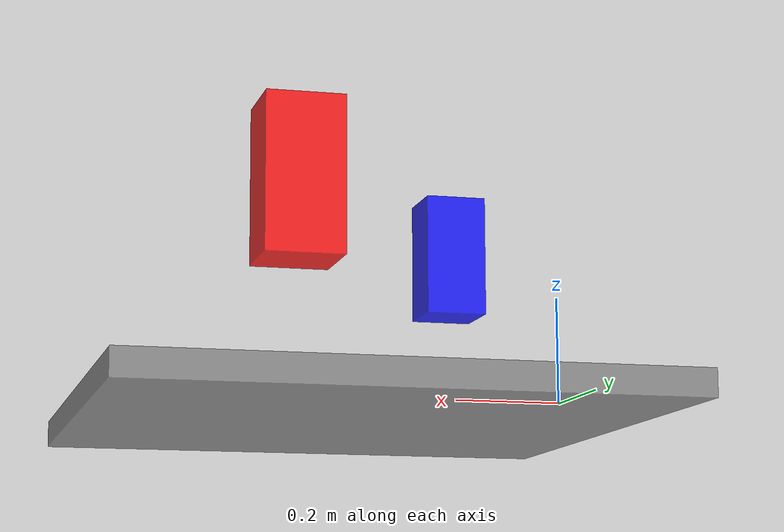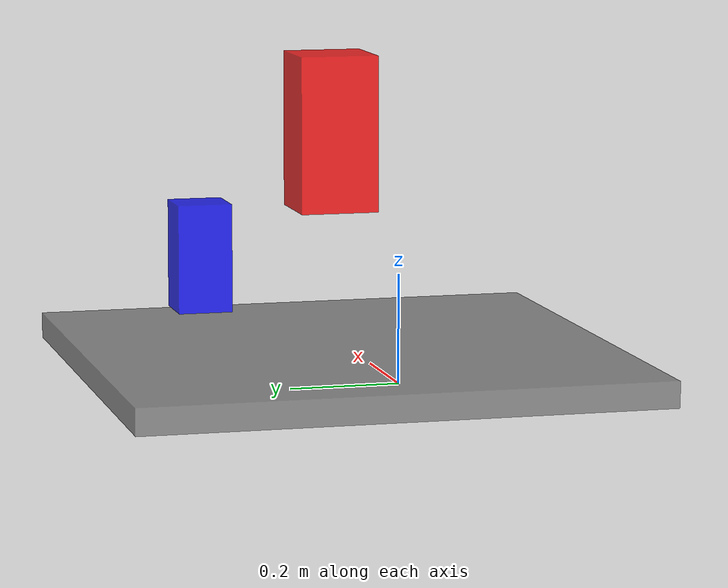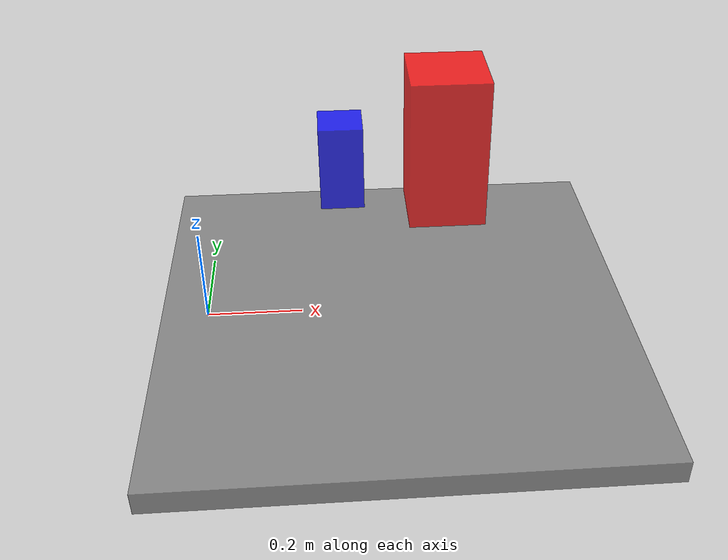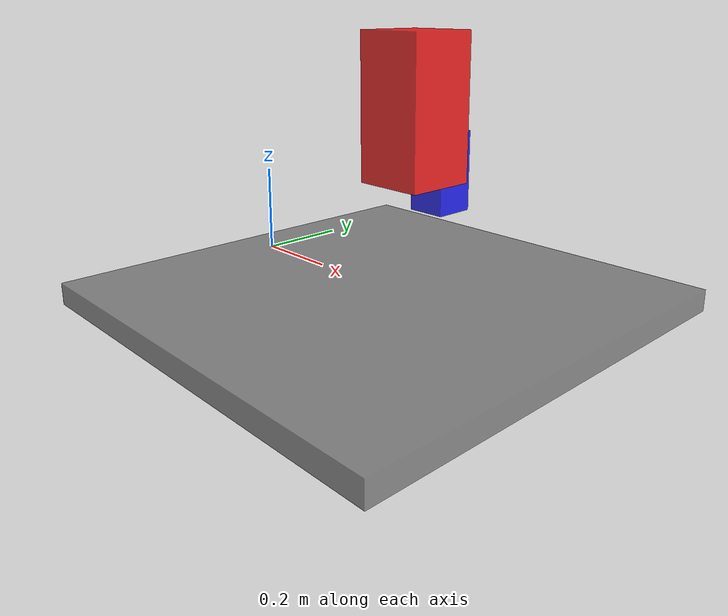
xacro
<?xml version="1.0"?>
<robot xmlns:xacro="http://www.ros.org/wiki/xacro" name="collision_obstacles">

  <!-- CONFIGURAZIONE CENTRALIZZATA DEGLI OSTACOLI  -->
  <!-- Modifica SOLO questi valori per cambiare     -->
  <!-- posizione e dimensioni degli ostacoli        -->

  <!-- OSTACOLO 1 - Box Rosso principale -->
  <xacro:property name="obstacle1_pos_x" value="0.5"/>
  <xacro:property name="obstacle1_pos_y" value="0.0"/>
  <xacro:property name="obstacle1_pos_z" value="0.4"/>
  <xacro:property name="obstacle1_size_x" value="0.15"/>
  <xacro:property name="obstacle1_size_y" value="0.15"/>
  <xacro:property name="obstacle1_size_z" value="0.3"/>

  <!-- OSTACOLO 2 - Box Blu laterale -->
  <xacro:property name="obstacle2_pos_x" value="0.3"/>
  <xacro:property name="obstacle2_pos_y" value="0.3"/>
  <xacro:property name="obstacle2_pos_z" value="0.2"/>
  <xacro:property name="obstacle2_size_x" value="0.1"/>
  <xacro:property name="obstacle2_size_y" value="0.1"/>
  <xacro:property name="obstacle2_size_z" value="0.2"/>

  <!-- TAVOLO - Piano grigio -->
  <xacro:property name="table_pos_x" value="0.4"/>
  <xacro:property name="table_pos_y" value="0.0"/>
  <xacro:property name="table_pos_z" value="-0.025"/>
  <xacro:property name="table_size_x" value="1.0"/>
  <xacro:property name="table_size_y" value="1.0"/>
  <xacro:property name="table_size_z" value="0.05"/>

  <!-- DEFINIZIONE ROBOT - Non modificare sotto     -->

  <!-- Link base -->
  <link name="world"/>

  <!-- OSTACOLO 1 -->
  <link name="obstacle_1">
    <visual>
      <geometry>
        <box size="${obstacle1_size_x} ${obstacle1_size_y} ${obstacle1_size_z}"/>
      </geometry>
      <material name="red">
        <color rgba="1.0 0.0 0.0 0.8"/>
      </material>
    </visual>
    <collision>
      <geometry>
        <box size="${obstacle1_size_x} ${obstacle1_size_y} ${obstacle1_size_z}"/>
      </geometry>
    </collision>
    <inertial>
      <mass value="1.0"/>
      <inertia ixx="0.0075" ixy="0" ixz="0" iyy="0.0075" iyz="0" izz="0.00375"/>
    </inertial>
  </link>

  <joint name="obstacle_1_joint" type="fixed">
    <parent link="world"/>
    <child link="obstacle_1"/>
    <origin xyz="${obstacle1_pos_x} ${obstacle1_pos_y} ${obstacle1_pos_z}" rpy="0 0 0"/>
  </joint>

  <!-- OSTACOLO 2 -->
  <link name="obstacle_2">
    <visual>
      <geometry>
        <box size="${obstacle2_size_x} ${obstacle2_size_y} ${obstacle2_size_z}"/>
      </geometry>
      <material name="blue">
        <color rgba="0.0 0.0 1.0 0.8"/>
      </material>
    </visual>
    <collision>
      <geometry>
        <box size="${obstacle2_size_x} ${obstacle2_size_y} ${obstacle2_size_z}"/>
      </geometry>
    </collision>
    <inertial>
      <mass value="0.5"/>
      <inertia ixx="0.003" ixy="0" ixz="0" iyy="0.003" iyz="0" izz="0.002"/>
    </inertial>
  </link>

  <joint name="obstacle_2_joint" type="fixed">
    <parent link="world"/>
    <child link="obstacle_2"/>
    <origin xyz="${obstacle2_pos_x} ${obstacle2_pos_y} ${obstacle2_pos_z}" rpy="0 0 0"/>
  </joint>

  <!-- TAVOLO -->
  <link name="table">
    <visual>
      <geometry>
        <box size="${table_size_x} ${table_size_y} ${table_size_z}"/>
      </geometry>
      <material name="gray">
        <color rgba="0.5 0.5 0.5 0.8"/>
      </material>
    </visual>
    <collision>
      <geometry>
        <box size="${table_size_x} ${table_size_y} ${table_size_z}"/>
      </geometry>
    </collision>
    <inertial>
      <mass value="10.0"/>
      <inertia ixx="0.84" ixy="0" ixz="0" iyy="0.84" iyz="0" izz="1.66"/>
    </inertial>
  </link>

  <joint name="table_joint" type="fixed">
    <parent link="world"/>
    <child link="table"/>
    <origin xyz="${table_pos_x} ${table_pos_y} ${table_pos_z}" rpy="0 0 0"/>
  </joint>

  <!-- Proprietà Gazebo -->
  <gazebo reference="obstacle_1">
    <material>Gazebo/Red</material>
    <static>true</static>
  </gazebo>

  <gazebo reference="obstacle_2">
    <material>Gazebo/Blue</material>
    <static>true</static>
  </gazebo>

  <gazebo reference="table">
    <material>Gazebo/Grey</material>
    <static>true</static>
  </gazebo>

</robot>
